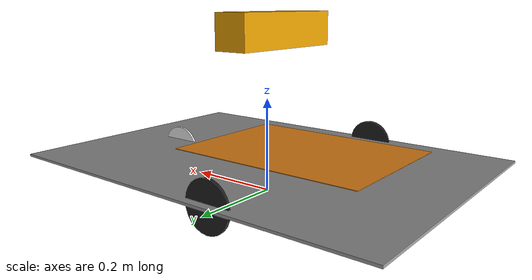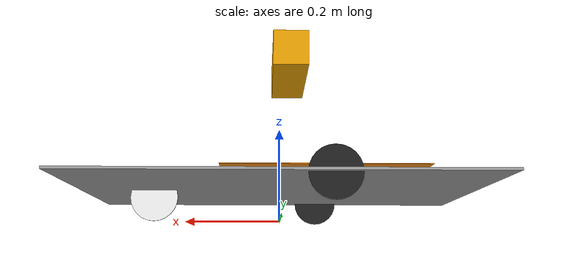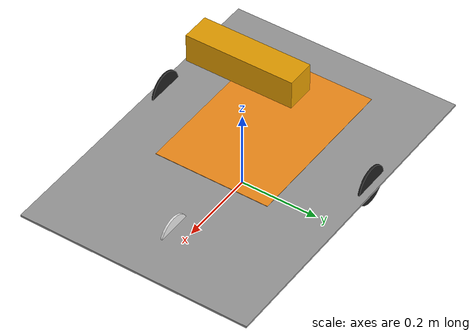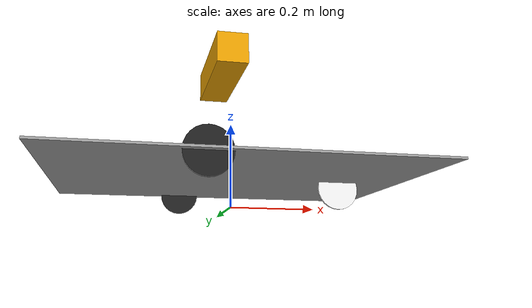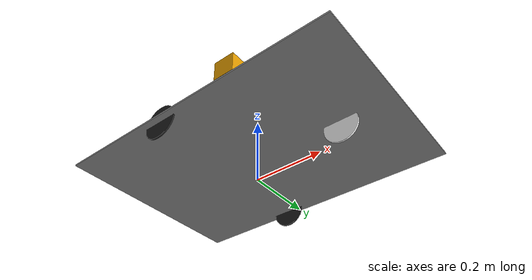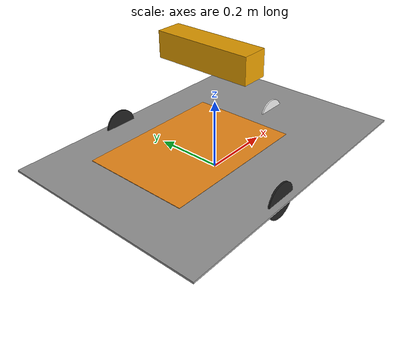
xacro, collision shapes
<?xml version="1.0"?>
<robot xmlns:sensor="http://playerstage.sourceforge.net/gazebo/xmlschema/#sensor"
       xmlns:controller="http://playerstage.sourceforge.net/gazebo/xmlschema/#controller"
       xmlns:interface="http://playerstage.sourceforge.net/gazebo/xmlschema/#interface"
       xmlns:xacro="http://ros.org/wiki/xacro"
       name="robomuse" >
  <!-- The following included files set up definitions of parts of the robot body -->
  <!-- misc common stuff? -->
  <xacro:include filename="$(find rm4_description)/urdf/common.xacro" />
  <!-- robomuse base -->
  <xacro:include filename="$(find rm4_description)/urdf/base/base.urdf.xacro" />
  <!-- robomuse rack -->
  <xacro:include filename="$(find rm4_description)/urdf/rack/rack.urdf.xacro" />
  <!-- generic simulator_gazebo plugins for starting mechanism control, (can be used for ros time, ros battery) -->
  <xacro:include filename="$(find rm4_description)/urdf/robomuse.gazebo"/>
  <!-- materials for visualization -->
  <xacro:include filename="$(find rm4_description)/urdf/materials.urdf.xacro" />

  <xacro:robomuse_base name="base"/>

  <xacro:robomuse_rack name="rack" parent="base_link">
    <origin xyz="-0.09 0 0.033" rpy="0 0 0" />
  </xacro:robomuse_rack>

	<xacro:property name="cam_px" value="0.010" />
	<xacro:property name="cam_pz" value="0.2900" />
	<xacro:property name="cam_or" value="0" />
	<xacro:property name="cam_op" value="0" />
	<xacro:property name="cam_oy" value="0" />

  <xacro:property name="cameraSize" value="0.05"/>
  <xacro:property name="cameraMass" value="0.1"/>

  <xacro:property name="kinect_cam_py" value="-0.0125"/>

 <!-- Parameterised in part by the values in turtlebot_properties.urdf.xacro -->

    <joint name="camera_rgb_joint" type="fixed">
      <origin xyz="${cam_px} ${kinect_cam_py} ${cam_pz}" rpy="${cam_or} ${cam_op} ${cam_oy}"/>
      <parent link="base_link"/>
      <child link="camera_rgb_frame" />
    </joint>

    <link name="camera_rgb_frame"/>

    <joint name="camera_rgb_optical_joint" type="fixed">
      <origin xyz="0 0 0" rpy="${-M_PI/2} 0 ${-M_PI/2}" />
      <parent link="camera_rgb_frame" />
      <child link="camera_rgb_optical_frame" />
    </joint>

    <link name="camera_rgb_optical_frame"/>

    <joint name="camera_joint" type="fixed">
      <origin xyz="-0.031 ${-kinect_cam_py} -0.016" rpy="0 0 0"/>
      <parent link="camera_rgb_frame"/>
      <child link="camera_link"/>
    </joint>
      <link name="camera_link">
      <visual>
       <origin xyz="0 0 0" rpy="0 0 ${M_PI/2}"/>
        <geometry>
         <mesh filename="package://rm4_description/meshes/sensors/kinect_v0/kinect.dae"/>
        </geometry>
      </visual>
  	  <collision>
        <origin xyz="0.0 0.0 0.0" rpy="0 0 0"/>
  	    <geometry>
  	      <box size="0.07271 0.27794 0.073"/>
  	    </geometry>
  	  </collision>
      <inertial>
        <mass value="0.564" />
        <origin xyz="0 0 0" />
        <inertia ixx="0.003881243" ixy="0.0" ixz="0.0"
                 iyy="0.000498940" iyz="0.0"
                 izz="0.003879257" />
      </inertial>
    </link>

	<joint name="camera_depth_joint" type="fixed">
	  <origin xyz="0 ${2 * -kinect_cam_py} 0" rpy="0 0 0" />
	  <parent link="camera_rgb_frame" />
	  <child link="camera_depth_frame" />
	</joint>
	<link name="camera_depth_frame"/>

	<joint name="camera_depth_optical_joint" type="fixed">
	  <origin xyz="0 0 0" rpy="${-M_PI/2} 0 ${-M_PI/2}" />
	  <parent link="camera_depth_frame" />
	  <child link="camera_depth_optical_frame" />
	</joint>
	<link name="camera_depth_optical_frame"/>

     <!-- Kinect1 xacro -->
</robot>

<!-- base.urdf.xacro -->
<robot xmlns:sensor="http://playerstage.sourceforge.net/gazebo/xmlschema/#sensor"
 xmlns:controller="http://playerstage.sourceforge.net/gazebo/xmlschema/#controller"
 xmlns:interface="http://playerstage.sourceforge.net/gazebo/xmlschema/#interface"
 xmlns:xacro="http://ros.org/wiki/xacro">

 <xacro:include filename="$(find rm4_description)/urdf/base/base.gazebo.xacro"/>
 <xacro:include filename="$(find rm4_description)/urdf/base/base.transmission.xacro"/>

 <property name="M_PI" value="3.1415926535897931" />
  <xacro:property name="cameraSize" value="0.05"/>
  <xacro:property name="cameraMass" value="0.1"/>

 <property name="caster_offset_x" value="0.267"/>
 <property name="caster_offset_z" value="-0.018"/> <!--caster_offset_z" value="-0.018-->

 <property name="caster_mass" value="0.1"/>
 <property name="caster_radius" value="0.05"/>
 <property name="caster_length" value="0.005"/>

 <property name="wheel_offset_x" value="-0.095"/>
 <property name="wheel_offset_y" value="0.28"/>
 <property name="wheel_offset_z" value="-0.003"/>

 <property name="wheel_mass" value="0.4"/>
 <property name="wheel_radius" value="0.05"/>
 <property name="wheel_length" value="0.005"/>

 <property name="base_cg_x" value="0.081" />  <!--changed from -0.061-->
 <property name="base_cg_y" value="-0.045" />
 <property name="base_cg_z" value="${0.5*0.293}" />
 <property name="base_mass" value="50.0"/>

 <!-- simplified box collision geometry for base -->
 <property name="base_size_x" value="1.6936"/>
 <property name="base_size_y" value="1.2008"/>
 <property name="base_size_z" value="0.005"/>
 <property name="base_collision_size_z" value="0.04" />

 <!--           wheel                                      -->
 <xacro:macro name="robomuse_wheel" params="suffix parent reflect">
  <joint name="${suffix}_wheel_joint" type="continuous">
    <axis xyz="0 1 0" />
    <limit effort="7" velocity="15"/> <!-- alpha tested effort and velocity limits -->
    <safety_controller  k_velocity="10" />
    <dynamics damping="1.0" friction="0.0" />
    <origin xyz="${wheel_offset_x} ${reflect*wheel_offset_y} ${wheel_offset_z}" rpy="0 0 0" />
    <parent link="${parent}"/>
    <child link="${suffix}_wheel_link"/>
  </joint>
  <link name="${suffix}_wheel_link">
    <inertial>
      <mass value="${wheel_mass}" />
      <origin xyz="0 0 0" />
      <inertia  ixx="0.012411765597" ixy="-0.000711733678" ixz="0.00050272983"
                iyy="0.015218160428" iyz="-0.000004273467" izz="0.011763977943" />
    </inertial>
    <visual>
      <origin xyz="0 0 0" rpy="0 0 0" />
      <geometry>
        <mesh filename="package://rm4_description/meshes/wheel.stl" />
      </geometry>

      <material name="Black" />
    </visual>
    <collision>
      <origin xyz="0 0 0" rpy="${M_PI/2} 0 0" /> <!-- rotation because cyl. geom primitive has symmetry axis in +x direction -->
      <geometry>
        <cylinder radius="${wheel_radius}" length="${wheel_length}" />
      </geometry>
    </collision>
  </link>

  <!-- extensions -->
  <xacro:robomuse_wheel_gazebo suffix="${suffix}" />
  <xacro:robomuse_wheel_transmission suffix="${suffix}" />

 </xacro:macro>

<xacro:macro name="robomuse_caster" params="parent">
  <joint name="$caster_joint" type="continuous">
    <axis xyz="0 1 0" />
    <limit effort="7" velocity="15"/> <!-- alpha tested effort and velocity limits -->
    <safety_controller  k_velocity="10" />
    <dynamics damping="1.0" friction="0.0" />
    <origin xyz="${caster_offset_x} 0 ${caster_offset_z}" rpy="0 0 0" />
    <parent link="${parent}"/>
    <child link="caster_link"/>
  </joint>
  <link name="caster_link">
    <inertial>
      <mass value="${caster_mass}" />
      <origin xyz="0 0 0" />
      <inertia  ixx="0.012411765597" ixy="-0.000711733678" ixz="0.00050272983"
                iyy="0.015218160428" iyz="-0.000004273467" izz="0.011763977943" />
    </inertial>
    <visual>
      <origin xyz="0 0 0" rpy="0 0 0" />
      <geometry>
        <mesh filename="package://rm4_description/meshes/caster.stl" />
      </geometry>

      <material name="White" />
    </visual>
    <collision>
      <origin xyz="0 0 0" rpy="${M_PI/2} 0 0" /> <!-- rotation because cyl. geom primitive has symmetry axis in +x direction -->
      <geometry>
        <cylinder radius="${caster_radius}" length="${caster_length}" />
      </geometry>
    </collision>
  </link>

  <!-- extensions -->
  <xacro:robomuse_caster_gazebo />
  <xacro:robomuse_caster_transmission />

 </xacro:macro>

 <xacro:macro name="robomuse_base" params="name">
  <link name="${name}_link">
    <inertial>
      <mass value="${base_mass}"/>
      <origin xyz="${base_cg_x} ${base_cg_y} ${base_cg_z}" />
      <inertia ixx="0.012411765597" ixy="-0.000711733678" ixz="0.00050272983"
               iyy="0.015218160428" iyz="-0.000004273467" izz="0.011763977943" />
    </inertial>
    <visual>
      <origin xyz="0 0 0" rpy="0 0 0"/>
      <geometry>
        <mesh filename="package://rm4_description/meshes/base2.stl" />
      </geometry>
      <material name="Grey"/>
    </visual>

    <collision>
      <origin xyz="0 0 0" rpy="0 0 0"/>
      <geometry>
        <box size="${base_size_x/2.0} ${base_size_y/2.0} ${base_size_z}" />
      </geometry>
    </collision>
  </link>

      <!-- base_footprint is a fictitious link(frame) that is on the ground right below base_link origin,
      navigation stack dedpends on this frame -->
  <link name="${name}_footprint">
    <inertial>
      <mass value="1.0"/>
      <origin xyz="0 0 0" rpy="0 0 0"/>
      <inertia ixx="0.01" ixy="0.0" ixz="0.0" iyy="0.01" iyz="0.0" izz="0.01"/>
    </inertial>
    <visual>
      <origin xyz="0 0 0" rpy="0 0 0"/>
      <geometry>
        <box size="0.01 0.01 0.01"/>
      </geometry>
      <material name="Green"/>
    </visual>
    <collision>
      <origin xyz="0 0 ${-base_size_z / 2.0}" rpy="0 0 0"/>
      <geometry>
        <box size="0.001 0.001 0.001"/>
      </geometry>
    </collision>
  </link>

  <joint name="base_footprint_joint" type="fixed">
    <origin xyz="0 0 0.07" rpy="0 0 0"/>
    <child link="${name}_link"/>
    <parent link="${name}_footprint"/>
  </joint>

  <xacro:robomuse_caster parent="${name}_link"/>

  <xacro:robomuse_wheel suffix="l" parent="${name}_link" reflect="1.0"/>
  <xacro:robomuse_wheel suffix="r" parent="${name}_link" reflect="-1.0"/>

  <xacro:base_gazebo/>

</xacro:macro>

</robot>

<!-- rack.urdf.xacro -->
<robot xmlns:sensor="http://playerstage.sourceforge.net/gazebo/xmlschema/#sensor"
       xmlns:controller="http://playerstage.sourceforge.net/gazebo/xmlschema/#controller"
       xmlns:interface="http://playerstage.sourceforge.net/gazebo/xmlschema/#interface"
       xmlns:xacro="http://ros.org/wiki/xacro">

  <xacro:include filename="$(find rm4_description)/urdf/rack/rack.gazebo.xacro" />

  <xacro:macro name="robomuse_rack" params="name parent *origin">
    <joint name="${name}_joint" type="fixed">
      <insert_block name="origin" />
      <parent link="${parent}"/>
      <child link="${name}_link"/>
    </joint>
    <link name="${name}_link">
      <inertial>
        <mass value="36.248046" />
        <origin xyz="0 0 0.5" />
        <inertia ixx="2.771653750257" ixy="0.004284522609" ixz="-0.160418504506"
                 iyy="2.510019507959" iyz="0.029664468704" izz="0.526432355569" />
      </inertial>

      <visual>
        <origin xyz="0 0 0.3" rpy="0 0 0" />
        <geometry>
          <mesh filename="package://rm4_description/meshes/rack.stl"  />
        </geometry>

        <material name="Orange" />
      </visual>

      <collision name="${name}_collision">
        <origin xyz="0 0 0" rpy="0 0 0" />
        <geometry>
          <box size="${base_size_x/4} ${base_size_y/4} ${base_size_z/4}" />
        </geometry>
      </collision>
    </link>

    <!-- extensions -->
    <xacro:rack_gazebo name="${name}" />

  </xacro:macro>
</robot>
